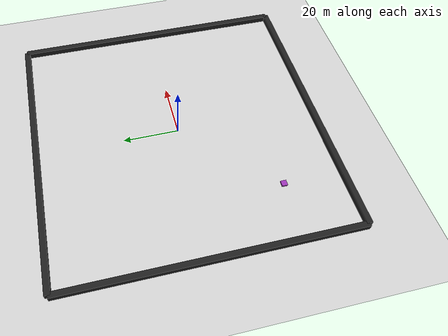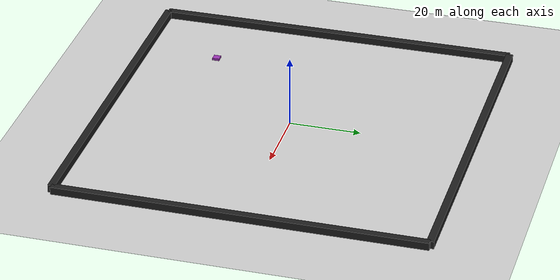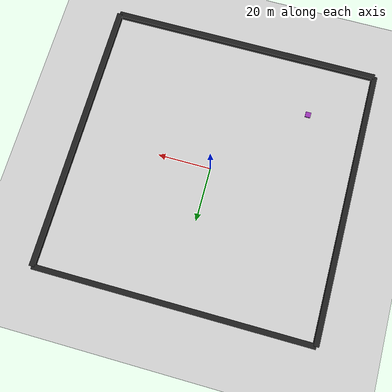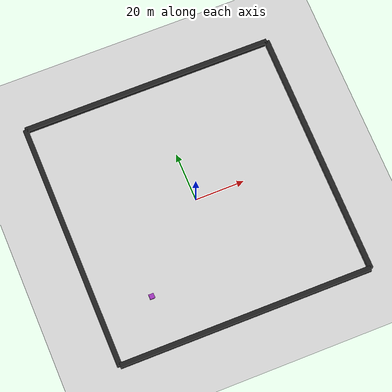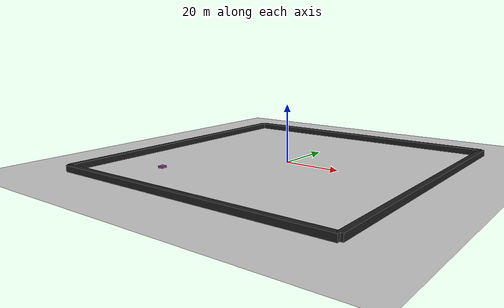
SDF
<?xml version="1.0" encoding="UTF-8"?>
<sdf version='1.6'>
       <world name="world">
              <!--
              * the world of the holf's foraging algorithm
              * size of world: 1
              -->
              <physics type='ode'>
                     <max_step_size>0.02</max_step_size>
                     <real_time_update_rate>50</real_time_update_rate>
                     <ode>
                            <solver>
                                   <type>quick</type>
                                   <iters>50</iters>
                            </solver>
                     </ode>
              </physics>
              <include>
                     <uri>model://sun</uri>
              </include>
              <model name="ground_plane">
                     <static>true</static>
                     <link name="link">
                            <collision name="collision">
                                   <geometry>
                                          <plane>
                                                 <normal>0 0 1</normal>
                                                 <size>100 100</size>
                                          </plane>
                                   </geometry>
                                   <surface>
                                          <contact>
                                                 <collide_bitmask>0xffff</collide_bitmask>
                                          </contact>
                                          <friction>
                                                 <ode>
                                                        <mu>100</mu>
                                                        <mu2>50</mu2>
                                                 </ode>
                                          </friction>
                                   </surface>
                            </collision>
                            <visual name="visual">
                                   <cast_shadows>false</cast_shadows>
                                   <geometry>
                                          <plane>
                                                 <normal>0 0 1</normal>
                                                 <size>100 100</size>
                                          </plane>
                                   </geometry>
                                   <material>
                                          <script>
                                                 <name>Gazebo/Grey</name>
                                          </script>
                                   </material>
                            </visual>
                     </link>
              </model>
              <model name='front_wall'>
                     <static>true</static>
                     <pose>0 51 0 0 0 0</pose>
                     <link name="fw_link">
                            <collision name="fw_col">
                                   <geometry>
                                          <box>
                                                 <size>102 2 4</size>
                                          </box>
                                   </geometry>
                            </collision>
                            <visual name="fw_vis">
                                   <cast_shadows>false</cast_shadows>
                                   <geometry>
                                          <box>
                                                 <size>102 2 4</size>
                                          </box>
                                   </geometry>
                                   <material>
                                          <script>
                                                 <name>Gazebo/Black</name>
                                          </script>
                                   </material>
                            </visual>
                     </link>
              </model>

              <model name='back_wall'>
                     <static>true</static>
                     <pose>0 -51 0 0 0 0</pose>
                     <link name="bw_link">
                            <collision name="bw_col">
                                   <geometry>
                                          <box>
                                                 <size>102 2 4</size>
                                          </box>
                                   </geometry>
                            </collision>
                            <visual name="bw_vis">
                                   <cast_shadows>false</cast_shadows>
                                   <geometry>
                                          <box>
                                                 <size>102 2 4</size>
                                          </box>
                                   </geometry>
                                   <material>
                                          <script>
                                                 <name>Gazebo/Black</name>
                                          </script>
                                   </material>
                            </visual>
                     </link>
              </model>

              <model name='left_wall'>
                     <static>true</static>
                     <pose>-51 0 0 0 0 1.57</pose>
                     <link name="lw_link">
                            <collision name="lw_col">
                                   <geometry>
                                          <box>
                                                 <size>102 2 4</size>
                                          </box>
                                   </geometry>
                            </collision>
                            <visual name="lw_vis">
                                   <cast_shadows>false</cast_shadows>
                                   <geometry>
                                          <box>
                                                 <size>102 2 4</size>
                                          </box>
                                   </geometry>
                                   <material>
                                          <script>
                                                 <name>Gazebo/Black</name>
                                          </script>
                                   </material>
                            </visual>
                     </link>
              </model>

              <model name='right_wall'>
                     <static>true</static>
                     <pose>51 0 0 0 0 1.57</pose>
                     <link name="lw_link">
                            <collision name="lw_col">
                                   <geometry>
                                          <box>
                                                 <size>102 2 4</size>
                                          </box>
                                   </geometry>
                            </collision>
                            <visual name="lw_vis">
                                   <cast_shadows>false</cast_shadows>
                                   <geometry>
                                          <box>
                                                 <size>102 2 4</size>
                                          </box>
                                   </geometry>
                                   <material>
                                          <script>
                                                 <name>Gazebo/Black</name>
                                          </script>
                                   </material>
                            </visual>
                     </link>
              </model>
              <model name='base'>
                     <static>true</static>
                     <pose>-30 -30 0 0 0 0</pose>
                     <link name="base_link">
                            <collision name="base_col">
                                   <geometry>
                                          <box>
                                                 <size>0 0 0</size>
                                          </box>
                                   </geometry>
                            </collision>
                            <visual name="base_vis">
                                   <cast_shadows>false</cast_shadows>
                                   <geometry>
                                          <box>
                                                 <size>2 2 1</size>
                                          </box>
                                   </geometry>
                                   <material>
                                          <script>
                                                 <name>Gazebo/Purple</name>
                                          </script>
                                   </material>
                            </visual>
                     </link>
              </model>
              <plugin name="factory" filename="build/libbot_factory.so"/>
       </world>
</sdf>
